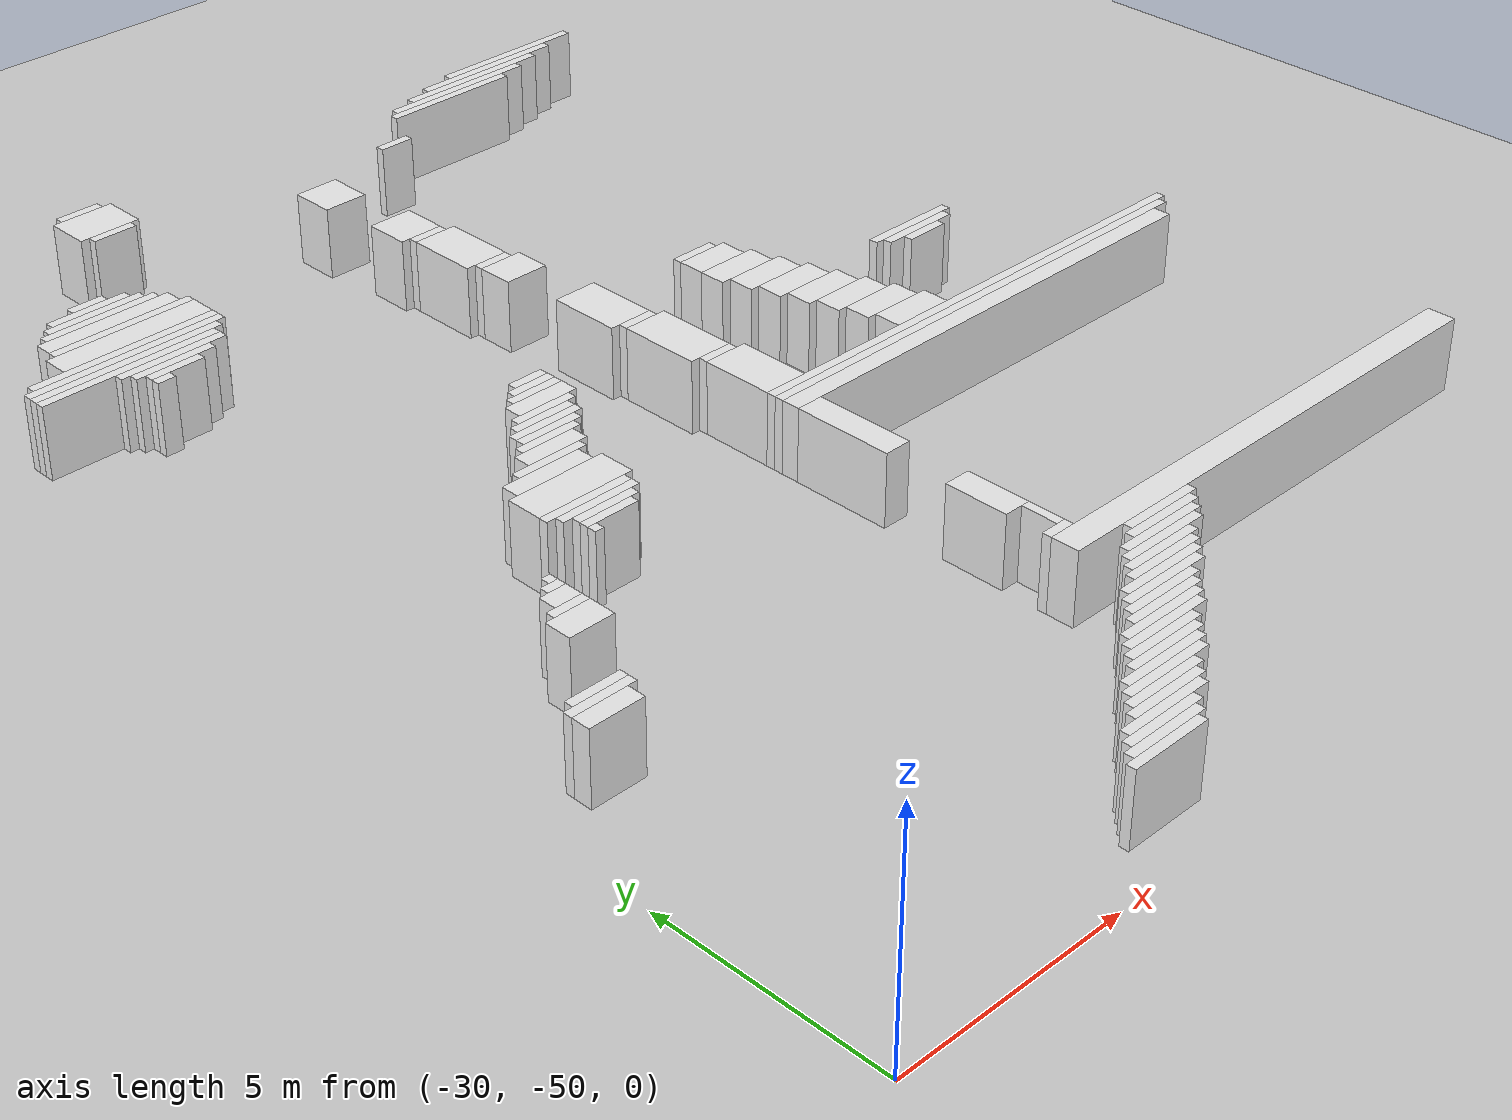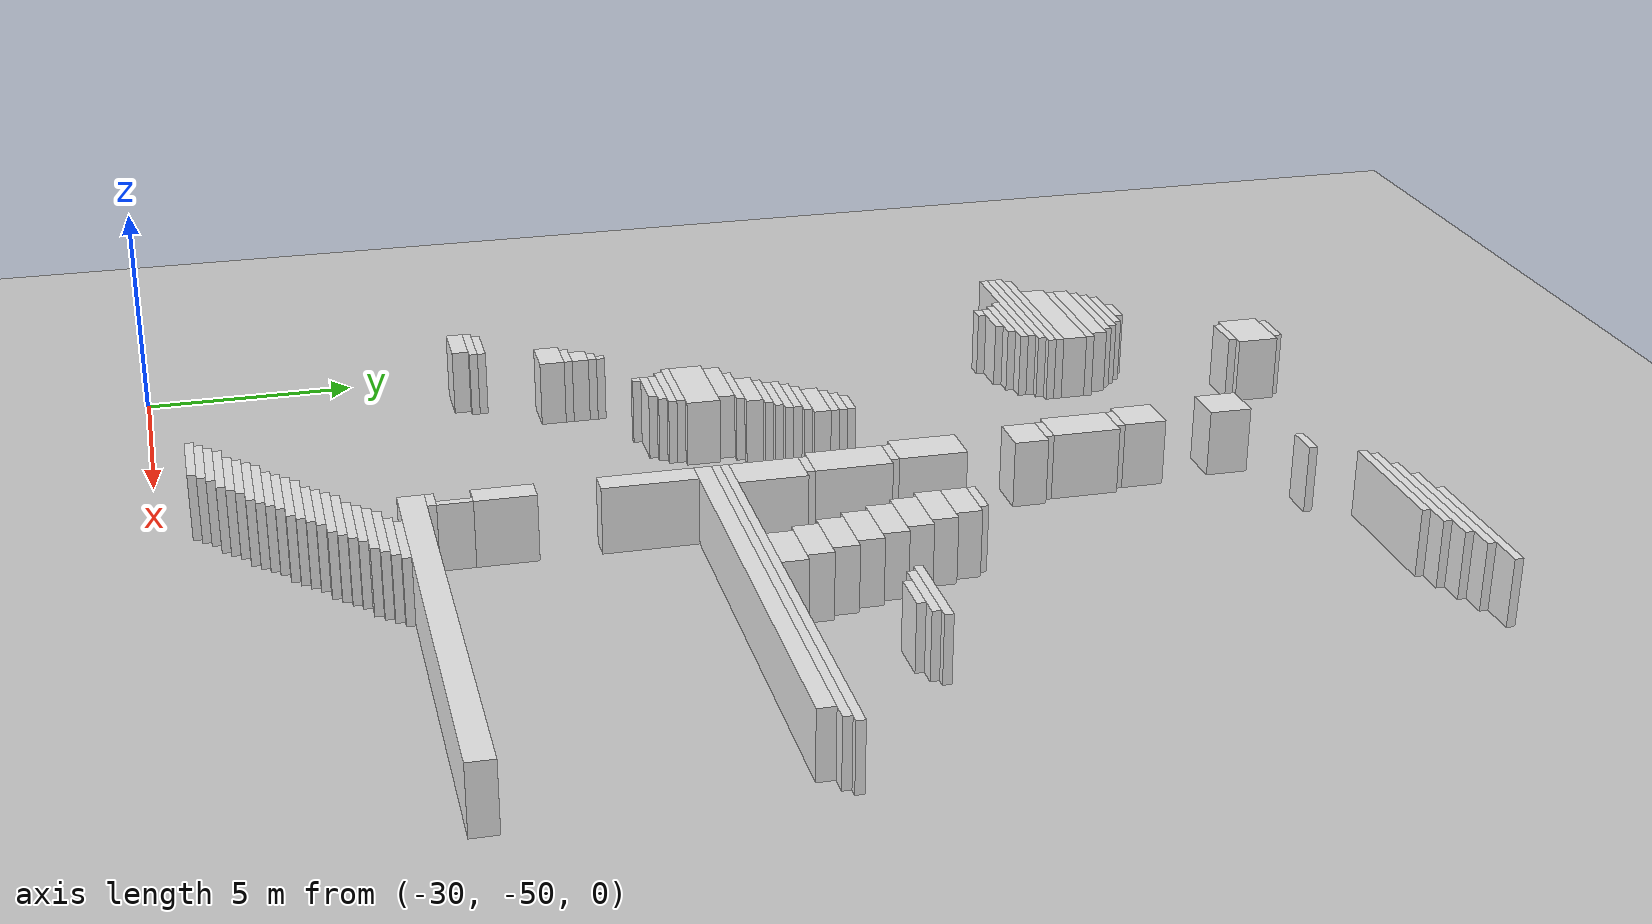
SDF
<sdf version="1.7">
 <world name="default">
  <model name="ground_plane">
   <static>1</static>
   <link name="link">
    <collision name="collision">
     <geometry><plane><normal>0 0 1</normal><size>120 120</size></plane></geometry>
    </collision>
    <visual name="visual">
     <geometry><plane><normal>0 0 1</normal><size>120 120</size></plane></geometry>
     <material>
      <script><uri>file://media/materials/scripts/gazebo.material</uri><name>Gazebo/Grey</name></script>
     </material>
    </visual>
   </link>
  </model>
  <model name="random_complex_01_model">
   <static>1</static>
   <link name="obs_2653">
    <pose>-24.7000 -22.3000 0.8000 0 0 0</pose>
    <collision name="obs_2653_col"><geometry><box><size>1.0000 0.2000 1.6000</size></box></geometry></collision>
    <visual name="obs_2653_vis">
     <geometry><box><size>1.0000 0.2000 1.6000</size></box></geometry>
     <material>
      <script><uri>file://media/materials/scripts/gazebo.material</uri><name>Gazebo/White</name></script>
     </material>
    </visual>
   </link>
   <link name="obs_2660">
    <pose>-13.2000 -22.5000 0.8000 0 0 0</pose>
    <collision name="obs_2660_col"><geometry><box><size>3.6000 0.2000 1.6000</size></box></geometry></collision>
    <visual name="obs_2660_vis">
     <geometry><box><size>3.6000 0.2000 1.6000</size></box></geometry>
     <material>
      <script><uri>file://media/materials/scripts/gazebo.material</uri><name>Gazebo/White</name></script>
     </material>
    </visual>
   </link>
   <link name="obs_2666">
    <pose>-14.0000 -22.7000 0.8000 0 0 0</pose>
    <collision name="obs_2666_col"><geometry><box><size>3.6000 0.2000 1.6000</size></box></geometry></collision>
    <visual name="obs_2666_vis">
     <geometry><box><size>3.6000 0.2000 1.6000</size></box></geometry>
     <material>
      <script><uri>file://media/materials/scripts/gazebo.material</uri><name>Gazebo/White</name></script>
     </material>
    </visual>
   </link>
   <link name="obs_2670">
    <pose>-14.6000 -22.9000 0.8000 0 0 0</pose>
    <collision name="obs_2670_col"><geometry><box><size>3.6000 0.2000 1.6000</size></box></geometry></collision>
    <visual name="obs_2670_vis">
     <geometry><box><size>3.6000 0.2000 1.6000</size></box></geometry>
     <material>
      <script><uri>file://media/materials/scripts/gazebo.material</uri><name>Gazebo/White</name></script>
     </material>
    </visual>
   </link>
   <link name="obs_2677">
    <pose>-15.2000 -23.1000 0.8000 0 0 0</pose>
    <collision name="obs_2677_col"><geometry><box><size>3.6000 0.2000 1.6000</size></box></geometry></collision>
    <visual name="obs_2677_vis">
     <geometry><box><size>3.6000 0.2000 1.6000</size></box></geometry>
     <material>
      <script><uri>file://media/materials/scripts/gazebo.material</uri><name>Gazebo/White</name></script>
     </material>
    </visual>
   </link>
   <link name="obs_2684">
    <pose>-24.7000 -22.9000 0.8000 0 0 0</pose>
    <collision name="obs_2684_col"><geometry><box><size>1.4000 1.0000 1.6000</size></box></geometry></collision>
    <visual name="obs_2684_vis">
     <geometry><box><size>1.4000 1.0000 1.6000</size></box></geometry>
     <material>
      <script><uri>file://media/materials/scripts/gazebo.material</uri><name>Gazebo/White</name></script>
     </material>
    </visual>
   </link>
   <link name="obs_2689">
    <pose>-15.6000 -23.3000 0.8000 0 0 0</pose>
    <collision name="obs_2689_col"><geometry><box><size>3.2000 0.2000 1.6000</size></box></geometry></collision>
    <visual name="obs_2689_vis">
     <geometry><box><size>3.2000 0.2000 1.6000</size></box></geometry>
     <material>
      <script><uri>file://media/materials/scripts/gazebo.material</uri><name>Gazebo/White</name></script>
     </material>
    </visual>
   </link>
   <link name="obs_2697">
    <pose>-24.7000 -23.5000 0.8000 0 0 0</pose>
    <collision name="obs_2697_col"><geometry><box><size>1.0000 0.2000 1.6000</size></box></geometry></collision>
    <visual name="obs_2697_vis">
     <geometry><box><size>1.0000 0.2000 1.6000</size></box></geometry>
     <material>
      <script><uri>file://media/materials/scripts/gazebo.material</uri><name>Gazebo/White</name></script>
     </material>
    </visual>
   </link>
   <link name="obs_2727">
    <pose>-18.0000 -24.3000 0.8000 0 0 0</pose>
    <collision name="obs_2727_col"><geometry><box><size>0.8000 0.2000 1.6000</size></box></geometry></collision>
    <visual name="obs_2727_vis">
     <geometry><box><size>0.8000 0.2000 1.6000</size></box></geometry>
     <material>
      <script><uri>file://media/materials/scripts/gazebo.material</uri><name>Gazebo/White</name></script>
     </material>
    </visual>
   </link>
   <link name="obs_2775">
    <pose>-20.5000 -25.3000 0.8000 0 0 0</pose>
    <collision name="obs_2775_col"><geometry><box><size>1.0000 1.0000 1.6000</size></box></geometry></collision>
    <visual name="obs_2775_vis">
     <geometry><box><size>1.0000 1.0000 1.6000</size></box></geometry>
     <material>
      <script><uri>file://media/materials/scripts/gazebo.material</uri><name>Gazebo/White</name></script>
     </material>
    </visual>
   </link>
   <link name="obs_2778">
    <pose>-26.8000 -25.7000 0.8000 0 0 0</pose>
    <collision name="obs_2778_col"><geometry><box><size>0.8000 0.2000 1.6000</size></box></geometry></collision>
    <visual name="obs_2778_vis">
     <geometry><box><size>0.8000 0.2000 1.6000</size></box></geometry>
     <material>
      <script><uri>file://media/materials/scripts/gazebo.material</uri><name>Gazebo/White</name></script>
     </material>
    </visual>
   </link>
   <link name="obs_2787">
    <pose>-26.9000 -25.9000 0.8000 0 0 0</pose>
    <collision name="obs_2787_col"><geometry><box><size>1.8000 0.2000 1.6000</size></box></geometry></collision>
    <visual name="obs_2787_vis">
     <geometry><box><size>1.8000 0.2000 1.6000</size></box></geometry>
     <material>
      <script><uri>file://media/materials/scripts/gazebo.material</uri><name>Gazebo/White</name></script>
     </material>
    </visual>
   </link>
   <link name="obs_2794">
    <pose>-26.9000 -26.1000 0.8000 0 0 0</pose>
    <collision name="obs_2794_col"><geometry><box><size>2.2000 0.2000 1.6000</size></box></geometry></collision>
    <visual name="obs_2794_vis">
     <geometry><box><size>2.2000 0.2000 1.6000</size></box></geometry>
     <material>
      <script><uri>file://media/materials/scripts/gazebo.material</uri><name>Gazebo/White</name></script>
     </material>
    </visual>
   </link>
   <link name="obs_2800">
    <pose>-26.9000 -26.3000 0.8000 0 0 0</pose>
    <collision name="obs_2800_col"><geometry><box><size>2.6000 0.2000 1.6000</size></box></geometry></collision>
    <visual name="obs_2800_vis">
     <geometry><box><size>2.6000 0.2000 1.6000</size></box></geometry>
     <material>
      <script><uri>file://media/materials/scripts/gazebo.material</uri><name>Gazebo/White</name></script>
     </material>
    </visual>
   </link>
   <link name="obs_2810">
    <pose>-26.9000 -26.6000 0.8000 0 0 0</pose>
    <collision name="obs_2810_col"><geometry><box><size>3.0000 0.4000 1.6000</size></box></geometry></collision>
    <visual name="obs_2810_vis">
     <geometry><box><size>3.0000 0.4000 1.6000</size></box></geometry>
     <material>
      <script><uri>file://media/materials/scripts/gazebo.material</uri><name>Gazebo/White</name></script>
     </material>
    </visual>
   </link>
   <link name="obs_2817">
    <pose>-26.8000 -26.9000 0.8000 0 0 0</pose>
    <collision name="obs_2817_col"><geometry><box><size>3.2000 0.2000 1.6000</size></box></geometry></collision>
    <visual name="obs_2817_vis">
     <geometry><box><size>3.2000 0.2000 1.6000</size></box></geometry>
     <material>
      <script><uri>file://media/materials/scripts/gazebo.material</uri><name>Gazebo/White</name></script>
     </material>
    </visual>
   </link>
   <link name="obs_2836">
    <pose>-26.9000 -27.3000 0.8000 0 0 0</pose>
    <collision name="obs_2836_col"><geometry><box><size>3.4000 0.6000 1.6000</size></box></geometry></collision>
    <visual name="obs_2836_vis">
     <geometry><box><size>3.4000 0.6000 1.6000</size></box></geometry>
     <material>
      <script><uri>file://media/materials/scripts/gazebo.material</uri><name>Gazebo/White</name></script>
     </material>
    </visual>
   </link>
   <link name="obs_2848">
    <pose>-27.3000 -27.7000 0.8000 0 0 0</pose>
    <collision name="obs_2848_col"><geometry><box><size>4.2000 0.2000 1.6000</size></box></geometry></collision>
    <visual name="obs_2848_vis">
     <geometry><box><size>4.2000 0.2000 1.6000</size></box></geometry>
     <material>
      <script><uri>file://media/materials/scripts/gazebo.material</uri><name>Gazebo/White</name></script>
     </material>
    </visual>
   </link>
   <link name="obs_2852">
    <pose>-20.3000 -27.5000 0.8000 0 0 0</pose>
    <collision name="obs_2852_col"><geometry><box><size>1.0000 1.0000 1.6000</size></box></geometry></collision>
    <visual name="obs_2852_vis">
     <geometry><box><size>1.0000 1.0000 1.6000</size></box></geometry>
     <material>
      <script><uri>file://media/materials/scripts/gazebo.material</uri><name>Gazebo/White</name></script>
     </material>
    </visual>
   </link>
   <link name="obs_2855">
    <pose>-27.4000 -27.9000 0.8000 0 0 0</pose>
    <collision name="obs_2855_col"><geometry><box><size>4.4000 0.2000 1.6000</size></box></geometry></collision>
    <visual name="obs_2855_vis">
     <geometry><box><size>4.4000 0.2000 1.6000</size></box></geometry>
     <material>
      <script><uri>file://media/materials/scripts/gazebo.material</uri><name>Gazebo/White</name></script>
     </material>
    </visual>
   </link>
   <link name="obs_2863">
    <pose>-27.5000 -28.1000 0.8000 0 0 0</pose>
    <collision name="obs_2863_col"><geometry><box><size>4.2000 0.2000 1.6000</size></box></geometry></collision>
    <visual name="obs_2863_vis">
     <geometry><box><size>4.2000 0.2000 1.6000</size></box></geometry>
     <material>
      <script><uri>file://media/materials/scripts/gazebo.material</uri><name>Gazebo/White</name></script>
     </material>
    </visual>
   </link>
   <link name="obs_2864">
    <pose>-20.2000 -28.1000 0.8000 0 0 0</pose>
    <collision name="obs_2864_col"><geometry><box><size>0.8000 0.2000 1.6000</size></box></geometry></collision>
    <visual name="obs_2864_vis">
     <geometry><box><size>0.8000 0.2000 1.6000</size></box></geometry>
     <material>
      <script><uri>file://media/materials/scripts/gazebo.material</uri><name>Gazebo/White</name></script>
     </material>
    </visual>
   </link>
   <link name="obs_2871">
    <pose>-27.6000 -28.3000 0.8000 0 0 0</pose>
    <collision name="obs_2871_col"><geometry><box><size>4.0000 0.2000 1.6000</size></box></geometry></collision>
    <visual name="obs_2871_vis">
     <geometry><box><size>4.0000 0.2000 1.6000</size></box></geometry>
     <material>
      <script><uri>file://media/materials/scripts/gazebo.material</uri><name>Gazebo/White</name></script>
     </material>
    </visual>
   </link>
   <link name="obs_2880">
    <pose>-26.8000 -28.5000 0.8000 0 0 0</pose>
    <collision name="obs_2880_col"><geometry><box><size>2.4000 0.2000 1.6000</size></box></geometry></collision>
    <visual name="obs_2880_vis">
     <geometry><box><size>2.4000 0.2000 1.6000</size></box></geometry>
     <material>
      <script><uri>file://media/materials/scripts/gazebo.material</uri><name>Gazebo/White</name></script>
     </material>
    </visual>
   </link>
   <link name="obs_2891">
    <pose>-26.9000 -28.7000 0.8000 0 0 0</pose>
    <collision name="obs_2891_col"><geometry><box><size>1.8000 0.2000 1.6000</size></box></geometry></collision>
    <visual name="obs_2891_vis">
     <geometry><box><size>1.8000 0.2000 1.6000</size></box></geometry>
     <material>
      <script><uri>file://media/materials/scripts/gazebo.material</uri><name>Gazebo/White</name></script>
     </material>
    </visual>
   </link>
   <link name="obs_2900">
    <pose>-27.0000 -28.9000 0.8000 0 0 0</pose>
    <collision name="obs_2900_col"><geometry><box><size>1.2000 0.2000 1.6000</size></box></geometry></collision>
    <visual name="obs_2900_vis">
     <geometry><box><size>1.2000 0.2000 1.6000</size></box></geometry>
     <material>
      <script><uri>file://media/materials/scripts/gazebo.material</uri><name>Gazebo/White</name></script>
     </material>
    </visual>
   </link>
   <link name="obs_2906">
    <pose>-27.4000 -29.1000 0.8000 0 0 0</pose>
    <collision name="obs_2906_col"><geometry><box><size>0.4000 0.2000 1.6000</size></box></geometry></collision>
    <visual name="obs_2906_vis">
     <geometry><box><size>0.4000 0.2000 1.6000</size></box></geometry>
     <material>
      <script><uri>file://media/materials/scripts/gazebo.material</uri><name>Gazebo/White</name></script>
     </material>
    </visual>
   </link>
   <link name="obs_2921">
    <pose>-20.1000 -29.0000 0.8000 0 0 0</pose>
    <collision name="obs_2921_col"><geometry><box><size>1.0000 1.6000 1.6000</size></box></geometry></collision>
    <visual name="obs_2921_vis">
     <geometry><box><size>1.0000 1.6000 1.6000</size></box></geometry>
     <material>
      <script><uri>file://media/materials/scripts/gazebo.material</uri><name>Gazebo/White</name></script>
     </material>
    </visual>
   </link>
   <link name="obs_2932">
    <pose>-20.0000 -29.9000 0.8000 0 0 0</pose>
    <collision name="obs_2932_col"><geometry><box><size>0.8000 0.2000 1.6000</size></box></geometry></collision>
    <visual name="obs_2932_vis">
     <geometry><box><size>0.8000 0.2000 1.6000</size></box></geometry>
     <material>
      <script><uri>file://media/materials/scripts/gazebo.material</uri><name>Gazebo/White</name></script>
     </material>
    </visual>
   </link>
   <link name="obs_2955">
    <pose>-19.9000 -30.4000 0.8000 0 0 0</pose>
    <collision name="obs_2955_col"><geometry><box><size>1.0000 0.8000 1.6000</size></box></geometry></collision>
    <visual name="obs_2955_vis">
     <geometry><box><size>1.0000 0.8000 1.6000</size></box></geometry>
     <material>
      <script><uri>file://media/materials/scripts/gazebo.material</uri><name>Gazebo/White</name></script>
     </material>
    </visual>
   </link>
   <link name="obs_3016">
    <pose>-16.9000 -32.5000 0.8000 0 0 0</pose>
    <collision name="obs_3016_col"><geometry><box><size>1.0000 0.2000 1.6000</size></box></geometry></collision>
    <visual name="obs_3016_vis">
     <geometry><box><size>1.0000 0.2000 1.6000</size></box></geometry>
     <material>
      <script><uri>file://media/materials/scripts/gazebo.material</uri><name>Gazebo/White</name></script>
     </material>
    </visual>
   </link>
   <link name="obs_3036">
    <pose>-16.8000 -32.9000 0.8000 0 0 0</pose>
    <collision name="obs_3036_col"><geometry><box><size>1.2000 0.6000 1.6000</size></box></geometry></collision>
    <visual name="obs_3036_vis">
     <geometry><box><size>1.2000 0.6000 1.6000</size></box></geometry>
     <material>
      <script><uri>file://media/materials/scripts/gazebo.material</uri><name>Gazebo/White</name></script>
     </material>
    </visual>
   </link>
   <link name="obs_3053">
    <pose>-19.7000 -32.8000 0.8000 0 0 0</pose>
    <collision name="obs_3053_col"><geometry><box><size>1.0000 1.6000 1.6000</size></box></geometry></collision>
    <visual name="obs_3053_vis">
     <geometry><box><size>1.0000 1.6000 1.6000</size></box></geometry>
     <material>
      <script><uri>file://media/materials/scripts/gazebo.material</uri><name>Gazebo/White</name></script>
     </material>
    </visual>
   </link>
   <link name="obs_3060">
    <pose>-16.7000 -33.5000 0.8000 0 0 0</pose>
    <collision name="obs_3060_col"><geometry><box><size>1.4000 0.6000 1.6000</size></box></geometry></collision>
    <visual name="obs_3060_vis">
     <geometry><box><size>1.4000 0.6000 1.6000</size></box></geometry>
     <material>
      <script><uri>file://media/materials/scripts/gazebo.material</uri><name>Gazebo/White</name></script>
     </material>
    </visual>
   </link>
   <link name="obs_3063">
    <pose>-19.6000 -33.7000 0.8000 0 0 0</pose>
    <collision name="obs_3063_col"><geometry><box><size>0.8000 0.2000 1.6000</size></box></geometry></collision>
    <visual name="obs_3063_vis">
     <geometry><box><size>0.8000 0.2000 1.6000</size></box></geometry>
     <material>
      <script><uri>file://media/materials/scripts/gazebo.material</uri><name>Gazebo/White</name></script>
     </material>
    </visual>
   </link>
   <link name="obs_3073">
    <pose>-22.6000 -33.9000 0.8000 0 0 0</pose>
    <collision name="obs_3073_col"><geometry><box><size>0.8000 0.2000 1.6000</size></box></geometry></collision>
    <visual name="obs_3073_vis">
     <geometry><box><size>0.8000 0.2000 1.6000</size></box></geometry>
     <material>
      <script><uri>file://media/materials/scripts/gazebo.material</uri><name>Gazebo/White</name></script>
     </material>
    </visual>
   </link>
   <link name="obs_3081">
    <pose>-22.7000 -34.1000 0.8000 0 0 0</pose>
    <collision name="obs_3081_col"><geometry><box><size>1.0000 0.2000 1.6000</size></box></geometry></collision>
    <visual name="obs_3081_vis">
     <geometry><box><size>1.0000 0.2000 1.6000</size></box></geometry>
     <material>
      <script><uri>file://media/materials/scripts/gazebo.material</uri><name>Gazebo/White</name></script>
     </material>
    </visual>
   </link>
   <link name="obs_3085">
    <pose>-16.5000 -34.1000 0.8000 0 0 0</pose>
    <collision name="obs_3085_col"><geometry><box><size>1.4000 0.6000 1.6000</size></box></geometry></collision>
    <visual name="obs_3085_vis">
     <geometry><box><size>1.4000 0.6000 1.6000</size></box></geometry>
     <material>
      <script><uri>file://media/materials/scripts/gazebo.material</uri><name>Gazebo/White</name></script>
     </material>
    </visual>
   </link>
   <link name="obs_3087">
    <pose>-22.8000 -34.3000 0.8000 0 0 0</pose>
    <collision name="obs_3087_col"><geometry><box><size>1.2000 0.2000 1.6000</size></box></geometry></collision>
    <visual name="obs_3087_vis">
     <geometry><box><size>1.2000 0.2000 1.6000</size></box></geometry>
     <material>
      <script><uri>file://media/materials/scripts/gazebo.material</uri><name>Gazebo/White</name></script>
     </material>
    </visual>
   </link>
   <link name="obs_3098">
    <pose>-22.9000 -34.6000 0.8000 0 0 0</pose>
    <collision name="obs_3098_col"><geometry><box><size>1.4000 0.4000 1.6000</size></box></geometry></collision>
    <visual name="obs_3098_vis">
     <geometry><box><size>1.4000 0.4000 1.6000</size></box></geometry>
     <material>
      <script><uri>file://media/materials/scripts/gazebo.material</uri><name>Gazebo/White</name></script>
     </material>
    </visual>
   </link>
   <link name="obs_3099">
    <pose>-12.9000 -34.7000 0.8000 0 0 0</pose>
    <collision name="obs_3099_col"><geometry><box><size>2.2000 0.2000 1.6000</size></box></geometry></collision>
    <visual name="obs_3099_vis">
     <geometry><box><size>2.2000 0.2000 1.6000</size></box></geometry>
     <material>
      <script><uri>file://media/materials/scripts/gazebo.material</uri><name>Gazebo/White</name></script>
     </material>
    </visual>
   </link>
   <link name="obs_3107">
    <pose>-16.3000 -34.7000 0.8000 0 0 0</pose>
    <collision name="obs_3107_col"><geometry><box><size>1.4000 0.6000 1.6000</size></box></geometry></collision>
    <visual name="obs_3107_vis">
     <geometry><box><size>1.4000 0.6000 1.6000</size></box></geometry>
     <material>
      <script><uri>file://media/materials/scripts/gazebo.material</uri><name>Gazebo/White</name></script>
     </material>
    </visual>
   </link>
   <link name="obs_3110">
    <pose>-23.1000 -34.9000 0.8000 0 0 0</pose>
    <collision name="obs_3110_col"><geometry><box><size>1.4000 0.2000 1.6000</size></box></geometry></collision>
    <visual name="obs_3110_vis">
     <geometry><box><size>1.4000 0.2000 1.6000</size></box></geometry>
     <material>
      <script><uri>file://media/materials/scripts/gazebo.material</uri><name>Gazebo/White</name></script>
     </material>
    </visual>
   </link>
   <link name="obs_3111">
    <pose>-12.9000 -34.9000 0.8000 0 0 0</pose>
    <collision name="obs_3111_col"><geometry><box><size>1.8000 0.2000 1.6000</size></box></geometry></collision>
    <visual name="obs_3111_vis">
     <geometry><box><size>1.8000 0.2000 1.6000</size></box></geometry>
     <material>
      <script><uri>file://media/materials/scripts/gazebo.material</uri><name>Gazebo/White</name></script>
     </material>
    </visual>
   </link>
   <link name="obs_3116">
    <pose>-23.3000 -35.1000 0.8000 0 0 0</pose>
    <collision name="obs_3116_col"><geometry><box><size>1.4000 0.2000 1.6000</size></box></geometry></collision>
    <visual name="obs_3116_vis">
     <geometry><box><size>1.4000 0.2000 1.6000</size></box></geometry>
     <material>
      <script><uri>file://media/materials/scripts/gazebo.material</uri><name>Gazebo/White</name></script>
     </material>
    </visual>
   </link>
   <link name="obs_3117">
    <pose>-12.9000 -35.1000 0.8000 0 0 0</pose>
    <collision name="obs_3117_col"><geometry><box><size>1.0000 0.2000 1.6000</size></box></geometry></collision>
    <visual name="obs_3117_vis">
     <geometry><box><size>1.0000 0.2000 1.6000</size></box></geometry>
     <material>
      <script><uri>file://media/materials/scripts/gazebo.material</uri><name>Gazebo/White</name></script>
     </material>
    </visual>
   </link>
   <link name="obs_3123">
    <pose>-23.4000 -35.3000 0.8000 0 0 0</pose>
    <collision name="obs_3123_col"><geometry><box><size>1.6000 0.2000 1.6000</size></box></geometry></collision>
    <visual name="obs_3123_vis">
     <geometry><box><size>1.6000 0.2000 1.6000</size></box></geometry>
     <material>
      <script><uri>file://media/materials/scripts/gazebo.material</uri><name>Gazebo/White</name></script>
     </material>
    </visual>
   </link>
   <link name="obs_3128">
    <pose>-19.5000 -34.7000 0.8000 0 0 0</pose>
    <collision name="obs_3128_col"><geometry><box><size>1.0000 1.8000 1.6000</size></box></geometry></collision>
    <visual name="obs_3128_vis">
     <geometry><box><size>1.0000 1.8000 1.6000</size></box></geometry>
     <material>
      <script><uri>file://media/materials/scripts/gazebo.material</uri><name>Gazebo/White</name></script>
     </material>
    </visual>
   </link>
   <link name="obs_3130">
    <pose>-16.1000 -35.3000 0.8000 0 0 0</pose>
    <collision name="obs_3130_col"><geometry><box><size>1.4000 0.6000 1.6000</size></box></geometry></collision>
    <visual name="obs_3130_vis">
     <geometry><box><size>1.4000 0.6000 1.6000</size></box></geometry>
     <material>
      <script><uri>file://media/materials/scripts/gazebo.material</uri><name>Gazebo/White</name></script>
     </material>
    </visual>
   </link>
   <link name="obs_3132">
    <pose>-23.5000 -35.5000 0.8000 0 0 0</pose>
    <collision name="obs_3132_col"><geometry><box><size>1.4000 0.2000 1.6000</size></box></geometry></collision>
    <visual name="obs_3132_vis">
     <geometry><box><size>1.4000 0.2000 1.6000</size></box></geometry>
     <material>
      <script><uri>file://media/materials/scripts/gazebo.material</uri><name>Gazebo/White</name></script>
     </material>
    </visual>
   </link>
   <link name="obs_3141">
    <pose>-23.7000 -35.7000 0.8000 0 0 0</pose>
    <collision name="obs_3141_col"><geometry><box><size>1.4000 0.2000 1.6000</size></box></geometry></collision>
    <visual name="obs_3141_vis">
     <geometry><box><size>1.4000 0.2000 1.6000</size></box></geometry>
     <material>
      <script><uri>file://media/materials/scripts/gazebo.material</uri><name>Gazebo/White</name></script>
     </material>
    </visual>
   </link>
   <link name="obs_3142">
    <pose>-19.4000 -35.7000 0.8000 0 0 0</pose>
    <collision name="obs_3142_col"><geometry><box><size>0.8000 0.2000 1.6000</size></box></geometry></collision>
    <visual name="obs_3142_vis">
     <geometry><box><size>0.8000 0.2000 1.6000</size></box></geometry>
     <material>
      <script><uri>file://media/materials/scripts/gazebo.material</uri><name>Gazebo/White</name></script>
     </material>
    </visual>
   </link>
   <link name="obs_3153">
    <pose>-15.9000 -35.9000 0.8000 0 0 0</pose>
    <collision name="obs_3153_col"><geometry><box><size>1.4000 0.6000 1.6000</size></box></geometry></collision>
    <visual name="obs_3153_vis">
     <geometry><box><size>1.4000 0.6000 1.6000</size></box></geometry>
     <material>
      <script><uri>file://media/materials/scripts/gazebo.material</uri><name>Gazebo/White</name></script>
     </material>
    </visual>
   </link>
   <link name="obs_3154">
    <pose>-23.9000 -36.0000 0.8000 0 0 0</pose>
    <collision name="obs_3154_col"><geometry><box><size>1.4000 0.4000 1.6000</size></box></geometry></collision>
    <visual name="obs_3154_vis">
     <geometry><box><size>1.4000 0.4000 1.6000</size></box></geometry>
     <material>
      <script><uri>file://media/materials/scripts/gazebo.material</uri><name>Gazebo/White</name></script>
     </material>
    </visual>
   </link>
   <link name="obs_3164">
    <pose>-24.2000 -36.3000 0.8000 0 0 0</pose>
    <collision name="obs_3164_col"><geometry><box><size>1.6000 0.2000 1.6000</size></box></geometry></collision>
    <visual name="obs_3164_vis">
     <geometry><box><size>1.6000 0.2000 1.6000</size></box></geometry>
     <material>
      <script><uri>file://media/materials/scripts/gazebo.material</uri><name>Gazebo/White</name></script>
     </material>
    </visual>
   </link>
   <link name="obs_3175">
    <pose>-15.7000 -36.5000 0.8000 0 0 0</pose>
    <collision name="obs_3175_col"><geometry><box><size>1.4000 0.6000 1.6000</size></box></geometry></collision>
    <visual name="obs_3175_vis">
     <geometry><box><size>1.4000 0.6000 1.6000</size></box></geometry>
     <material>
      <script><uri>file://media/materials/scripts/gazebo.material</uri><name>Gazebo/White</name></script>
     </material>
    </visual>
   </link>
   <link name="obs_3176">
    <pose>-24.5000 -36.6000 0.8000 0 0 0</pose>
    <collision name="obs_3176_col"><geometry><box><size>1.8000 0.4000 1.6000</size></box></geometry></collision>
    <visual name="obs_3176_vis">
     <geometry><box><size>1.8000 0.4000 1.6000</size></box></geometry>
     <material>
      <script><uri>file://media/materials/scripts/gazebo.material</uri><name>Gazebo/White</name></script>
     </material>
    </visual>
   </link>
   <link name="obs_3194">
    <pose>-19.3000 -36.6000 0.8000 0 0 0</pose>
    <collision name="obs_3194_col"><geometry><box><size>1.0000 1.6000 1.6000</size></box></geometry></collision>
    <visual name="obs_3194_vis">
     <geometry><box><size>1.0000 1.6000 1.6000</size></box></geometry>
     <material>
      <script><uri>file://media/materials/scripts/gazebo.material</uri><name>Gazebo/White</name></script>
     </material>
    </visual>
   </link>
   <link name="obs_3195">
    <pose>-15.5000 -37.1000 0.8000 0 0 0</pose>
    <collision name="obs_3195_col"><geometry><box><size>1.4000 0.6000 1.6000</size></box></geometry></collision>
    <visual name="obs_3195_vis">
     <geometry><box><size>1.4000 0.6000 1.6000</size></box></geometry>
     <material>
      <script><uri>file://media/materials/scripts/gazebo.material</uri><name>Gazebo/White</name></script>
     </material>
    </visual>
   </link>
   <link name="obs_3203">
    <pose>-24.5000 -37.2000 0.8000 0 0 0</pose>
    <collision name="obs_3203_col"><geometry><box><size>2.2000 0.8000 1.6000</size></box></geometry></collision>
    <visual name="obs_3203_vis">
     <geometry><box><size>2.2000 0.8000 1.6000</size></box></geometry>
     <material>
      <script><uri>file://media/materials/scripts/gazebo.material</uri><name>Gazebo/White</name></script>
     </material>
    </visual>
   </link>
   <link name="obs_3206">
    <pose>-14.0000 -37.5000 0.8000 0 0 0</pose>
    <collision name="obs_3206_col"><geometry><box><size>11.6000 0.2000 1.6000</size></box></geometry></collision>
    <visual name="obs_3206_vis">
     <geometry><box><size>11.6000 0.2000 1.6000</size></box></geometry>
     <material>
      <script><uri>file://media/materials/scripts/gazebo.material</uri><name>Gazebo/White</name></script>
     </material>
    </visual>
   </link>
   <link name="obs_3213">
    <pose>-24.6000 -37.7000 0.8000 0 0 0</pose>
    <collision name="obs_3213_col"><geometry><box><size>2.0000 0.2000 1.6000</size></box></geometry></collision>
    <visual name="obs_3213_vis">
     <geometry><box><size>2.0000 0.2000 1.6000</size></box></geometry>
     <material>
      <script><uri>file://media/materials/scripts/gazebo.material</uri><name>Gazebo/White</name></script>
     </material>
    </visual>
   </link>
   <link name="obs_3214">
    <pose>-14.1000 -37.7000 0.8000 0 0 0</pose>
    <collision name="obs_3214_col"><geometry><box><size>11.4000 0.2000 1.6000</size></box></geometry></collision>
    <visual name="obs_3214_vis">
     <geometry><box><size>11.4000 0.2000 1.6000</size></box></geometry>
     <material>
      <script><uri>file://media/materials/scripts/gazebo.material</uri><name>Gazebo/White</name></script>
     </material>
    </visual>
   </link>
   <link name="obs_3222">
    <pose>-24.5000 -37.9000 0.8000 0 0 0</pose>
    <collision name="obs_3222_col"><geometry><box><size>1.8000 0.2000 1.6000</size></box></geometry></collision>
    <visual name="obs_3222_vis">
     <geometry><box><size>1.8000 0.2000 1.6000</size></box></geometry>
     <material>
      <script><uri>file://media/materials/scripts/gazebo.material</uri><name>Gazebo/White</name></script>
     </material>
    </visual>
   </link>
   <link name="obs_3226">
    <pose>-14.3000 -38.0000 0.8000 0 0 0</pose>
    <collision name="obs_3226_col"><geometry><box><size>11.0000 0.4000 1.6000</size></box></geometry></collision>
    <visual name="obs_3226_vis">
     <geometry><box><size>11.0000 0.4000 1.6000</size></box></geometry>
     <material>
      <script><uri>file://media/materials/scripts/gazebo.material</uri><name>Gazebo/White</name></script>
     </material>
    </visual>
   </link>
   <link name="obs_3230">
    <pose>-24.5000 -38.1000 0.8000 0 0 0</pose>
    <collision name="obs_3230_col"><geometry><box><size>1.4000 0.2000 1.6000</size></box></geometry></collision>
    <visual name="obs_3230_vis">
     <geometry><box><size>1.4000 0.2000 1.6000</size></box></geometry>
     <material>
      <script><uri>file://media/materials/scripts/gazebo.material</uri><name>Gazebo/White</name></script>
     </material>
    </visual>
   </link>
   <link name="obs_3238">
    <pose>-24.6000 -38.3000 0.8000 0 0 0</pose>
    <collision name="obs_3238_col"><geometry><box><size>1.2000 0.2000 1.6000</size></box></geometry></collision>
    <visual name="obs_3238_vis">
     <geometry><box><size>1.2000 0.2000 1.6000</size></box></geometry>
     <material>
      <script><uri>file://media/materials/scripts/gazebo.material</uri><name>Gazebo/White</name></script>
     </material>
    </visual>
   </link>
   <link name="obs_3247">
    <pose>-25.1000 -38.5000 0.8000 0 0 0</pose>
    <collision name="obs_3247_col"><geometry><box><size>0.2000 0.2000 1.6000</size></box></geometry></collision>
    <visual name="obs_3247_vis">
     <geometry><box><size>0.2000 0.2000 1.6000</size></box></geometry>
     <material>
      <script><uri>file://media/materials/scripts/gazebo.material</uri><name>Gazebo/White</name></script>
     </material>
    </visual>
   </link>
   <link name="obs_3268">
    <pose>-26.7000 -39.1000 0.8000 0 0 0</pose>
    <collision name="obs_3268_col"><geometry><box><size>0.2000 0.2000 1.6000</size></box></geometry></collision>
    <visual name="obs_3268_vis">
     <geometry><box><size>0.2000 0.2000 1.6000</size></box></geometry>
     <material>
      <script><uri>file://media/materials/scripts/gazebo.material</uri><name>Gazebo/White</name></script>
     </material>
    </visual>
   </link>
   <link name="obs_3275">
    <pose>-26.8000 -39.3000 0.8000 0 0 0</pose>
    <collision name="obs_3275_col"><geometry><box><size>0.4000 0.2000 1.6000</size></box></geometry></collision>
    <visual name="obs_3275_vis">
     <geometry><box><size>0.4000 0.2000 1.6000</size></box></geometry>
     <material>
      <script><uri>file://media/materials/scripts/gazebo.material</uri><name>Gazebo/White</name></script>
     </material>
    </visual>
   </link>
   <link name="obs_3286">
    <pose>-26.9000 -39.6000 0.8000 0 0 0</pose>
    <collision name="obs_3286_col"><geometry><box><size>0.6000 0.4000 1.6000</size></box></geometry></collision>
    <visual name="obs_3286_vis">
     <geometry><box><size>0.6000 0.4000 1.6000</size></box></geometry>
     <material>
      <script><uri>file://media/materials/scripts/gazebo.material</uri><name>Gazebo/White</name></script>
     </material>
    </visual>
   </link>
   <link name="obs_3294">
    <pose>-27.0000 -39.9000 0.8000 0 0 0</pose>
    <collision name="obs_3294_col"><geometry><box><size>0.8000 0.2000 1.6000</size></box></geometry></collision>
    <visual name="obs_3294_vis">
     <geometry><box><size>0.8000 0.2000 1.6000</size></box></geometry>
     <material>
      <script><uri>file://media/materials/scripts/gazebo.material</uri><name>Gazebo/White</name></script>
     </material>
    </visual>
   </link>
   <link name="obs_3305">
    <pose>-19.5000 -39.3000 0.8000 0 0 0</pose>
    <collision name="obs_3305_col"><geometry><box><size>0.6000 2.2000 1.6000</size></box></geometry></collision>
    <visual name="obs_3305_vis">
     <geometry><box><size>0.6000 2.2000 1.6000</size></box></geometry>
     <material>
      <script><uri>file://media/materials/scripts/gazebo.material</uri><name>Gazebo/White</name></script>
     </material>
    </visual>
   </link>
   <link name="obs_3314">
    <pose>-27.1000 -40.3000 0.8000 0 0 0</pose>
    <collision name="obs_3314_col"><geometry><box><size>1.0000 0.6000 1.6000</size></box></geometry></collision>
    <visual name="obs_3314_vis">
     <geometry><box><size>1.0000 0.6000 1.6000</size></box></geometry>
     <material>
      <script><uri>file://media/materials/scripts/gazebo.material</uri><name>Gazebo/White</name></script>
     </material>
    </visual>
   </link>
   <link name="obs_3373">
    <pose>-28.2000 -41.9000 0.8000 0 0 0</pose>
    <collision name="obs_3373_col"><geometry><box><size>1.2000 0.2000 1.6000</size></box></geometry></collision>
    <visual name="obs_3373_vis">
     <geometry><box><size>1.2000 0.2000 1.6000</size></box></geometry>
     <material>
      <script><uri>file://media/materials/scripts/gazebo.material</uri><name>Gazebo/White</name></script>
     </material>
    </visual>
   </link>
   <link name="obs_3380">
    <pose>-28.3000 -42.1000 0.8000 0 0 0</pose>
    <collision name="obs_3380_col"><geometry><box><size>1.4000 0.2000 1.6000</size></box></geometry></collision>
    <visual name="obs_3380_vis">
     <geometry><box><size>1.4000 0.2000 1.6000</size></box></geometry>
     <material>
      <script><uri>file://media/materials/scripts/gazebo.material</uri><name>Gazebo/White</name></script>
     </material>
    </visual>
   </link>
   <link name="obs_3395">
    <pose>-28.4000 -42.4000 0.8000 0 0 0</pose>
    <collision name="obs_3395_col"><geometry><box><size>1.2000 0.4000 1.6000</size></box></geometry></collision>
    <visual name="obs_3395_vis">
     <geometry><box><size>1.2000 0.4000 1.6000</size></box></geometry>
     <material>
      <script><uri>file://media/materials/scripts/gazebo.material</uri><name>Gazebo/White</name></script>
     </material>
    </visual>
   </link>
   <link name="obs_3416">
    <pose>-19.5000 -42.5000 0.8000 0 0 0</pose>
    <collision name="obs_3416_col"><geometry><box><size>0.6000 1.4000 1.6000</size></box></geometry></collision>
    <visual name="obs_3416_vis">
     <geometry><box><size>0.6000 1.4000 1.6000</size></box></geometry>
     <material>
      <script><uri>file://media/materials/scripts/gazebo.material</uri><name>Gazebo/White</name></script>
     </material>
    </visual>
   </link>
   <link name="obs_3439">
    <pose>-19.3000 -43.6000 0.8000 0 0 0</pose>
    <collision name="obs_3439_col"><geometry><box><size>0.2000 0.8000 1.6000</size></box></geometry></collision>
    <visual name="obs_3439_vis">
     <geometry><box><size>0.2000 0.8000 1.6000</size></box></geometry>
     <material>
      <script><uri>file://media/materials/scripts/gazebo.material</uri><name>Gazebo/White</name></script>
     </material>
    </visual>
   </link>
   <link name="obs_3446">
    <pose>-19.5000 -44.1000 0.8000 0 0 0</pose>
    <collision name="obs_3446_col"><geometry><box><size>0.6000 0.2000 1.6000</size></box></geometry></collision>
    <visual name="obs_3446_vis">
     <geometry><box><size>0.6000 0.2000 1.6000</size></box></geometry>
     <material>
      <script><uri>file://media/materials/scripts/gazebo.material</uri><name>Gazebo/White</name></script>
     </material>
    </visual>
   </link>
   <link name="obs_3457">
    <pose>-14.1000 -44.5000 0.8000 0 0 0</pose>
    <collision name="obs_3457_col"><geometry><box><size>11.4000 0.6000 1.6000</size></box></geometry></collision>
    <visual name="obs_3457_vis">
     <geometry><box><size>11.4000 0.6000 1.6000</size></box></geometry>
     <material>
      <script><uri>file://media/materials/scripts/gazebo.material</uri><name>Gazebo/White</name></script>
     </material>
    </visual>
   </link>
   <link name="obs_3465">
    <pose>-17.7000 -44.9000 0.8000 0 0 0</pose>
    <collision name="obs_3465_col"><geometry><box><size>1.8000 0.2000 1.6000</size></box></geometry></collision>
    <visual name="obs_3465_vis">
     <geometry><box><size>1.8000 0.2000 1.6000</size></box></geometry>
     <material>
      <script><uri>file://media/materials/scripts/gazebo.material</uri><name>Gazebo/White</name></script>
     </material>
    </visual>
   </link>
   <link name="obs_3474">
    <pose>-17.9000 -45.1000 0.8000 0 0 0</pose>
    <collision name="obs_3474_col"><geometry><box><size>1.8000 0.2000 1.6000</size></box></geometry></collision>
    <visual name="obs_3474_vis">
     <geometry><box><size>1.8000 0.2000 1.6000</size></box></geometry>
     <material>
      <script><uri>file://media/materials/scripts/gazebo.material</uri><name>Gazebo/White</name></script>
     </material>
    </visual>
   </link>
   <link name="obs_3483">
    <pose>-18.2000 -45.3000 0.8000 0 0 0</pose>
    <collision name="obs_3483_col"><geometry><box><size>2.0000 0.2000 1.6000</size></box></geometry></collision>
    <visual name="obs_3483_vis">
     <geometry><box><size>2.0000 0.2000 1.6000</size></box></geometry>
     <material>
      <script><uri>file://media/materials/scripts/gazebo.material</uri><name>Gazebo/White</name></script>
     </material>
    </visual>
   </link>
   <link name="obs_3490">
    <pose>-18.4000 -45.5000 0.8000 0 0 0</pose>
    <collision name="obs_3490_col"><geometry><box><size>2.0000 0.2000 1.6000</size></box></geometry></collision>
    <visual name="obs_3490_vis">
     <geometry><box><size>2.0000 0.2000 1.6000</size></box></geometry>
     <material>
      <script><uri>file://media/materials/scripts/gazebo.material</uri><name>Gazebo/White</name></script>
     </material>
    </visual>
   </link>
   <link name="obs_3500">
    <pose>-18.7000 -45.7000 0.8000 0 0 0</pose>
    <collision name="obs_3500_col"><geometry><box><size>1.8000 0.2000 1.6000</size></box></geometry></collision>
    <visual name="obs_3500_vis">
     <geometry><box><size>1.8000 0.2000 1.6000</size></box></geometry>
     <material>
      <script><uri>file://media/materials/scripts/gazebo.material</uri><name>Gazebo/White</name></script>
     </material>
    </visual>
   </link>
   <link name="obs_3508">
    <pose>-18.9000 -45.9000 0.8000 0 0 0</pose>
    <collision name="obs_3508_col"><geometry><box><size>1.8000 0.2000 1.6000</size></box></geometry></collision>
    <visual name="obs_3508_vis">
     <geometry><box><size>1.8000 0.2000 1.6000</size></box></geometry>
     <material>
      <script><uri>file://media/materials/scripts/gazebo.material</uri><name>Gazebo/White</name></script>
     </material>
    </visual>
   </link>
   <link name="obs_3514">
    <pose>-19.2000 -46.1000 0.8000 0 0 0</pose>
    <collision name="obs_3514_col"><geometry><box><size>2.0000 0.2000 1.6000</size></box></geometry></collision>
    <visual name="obs_3514_vis">
     <geometry><box><size>2.0000 0.2000 1.6000</size></box></geometry>
     <material>
      <script><uri>file://media/materials/scripts/gazebo.material</uri><name>Gazebo/White</name></script>
     </material>
    </visual>
   </link>
   <link name="obs_3518">
    <pose>-19.4000 -46.3000 0.8000 0 0 0</pose>
    <collision name="obs_3518_col"><geometry><box><size>2.0000 0.2000 1.6000</size></box></geometry></collision>
    <visual name="obs_3518_vis">
     <geometry><box><size>2.0000 0.2000 1.6000</size></box></geometry>
     <material>
      <script><uri>file://media/materials/scripts/gazebo.material</uri><name>Gazebo/White</name></script>
     </material>
    </visual>
   </link>
   <link name="obs_3528">
    <pose>-19.7000 -46.5000 0.8000 0 0 0</pose>
    <collision name="obs_3528_col"><geometry><box><size>1.8000 0.2000 1.6000</size></box></geometry></collision>
    <visual name="obs_3528_vis">
     <geometry><box><size>1.8000 0.2000 1.6000</size></box></geometry>
     <material>
      <script><uri>file://media/materials/scripts/gazebo.material</uri><name>Gazebo/White</name></script>
     </material>
    </visual>
   </link>
   <link name="obs_3532">
    <pose>-19.9000 -46.7000 0.8000 0 0 0</pose>
    <collision name="obs_3532_col"><geometry><box><size>1.8000 0.2000 1.6000</size></box></geometry></collision>
    <visual name="obs_3532_vis">
     <geometry><box><size>1.8000 0.2000 1.6000</size></box></geometry>
     <material>
      <script><uri>file://media/materials/scripts/gazebo.material</uri><name>Gazebo/White</name></script>
     </material>
    </visual>
   </link>
   <link name="obs_3540">
    <pose>-20.2000 -46.9000 0.8000 0 0 0</pose>
    <collision name="obs_3540_col"><geometry><box><size>2.0000 0.2000 1.6000</size></box></geometry></collision>
    <visual name="obs_3540_vis">
     <geometry><box><size>2.0000 0.2000 1.6000</size></box></geometry>
     <material>
      <script><uri>file://media/materials/scripts/gazebo.material</uri><name>Gazebo/White</name></script>
     </material>
    </visual>
   </link>
   <link name="obs_3548">
    <pose>-20.4000 -47.1000 0.8000 0 0 0</pose>
    <collision name="obs_3548_col"><geometry><box><size>2.0000 0.2000 1.6000</size></box></geometry></collision>
    <visual name="obs_3548_vis">
     <geometry><box><size>2.0000 0.2000 1.6000</size></box></geometry>
     <material>
      <script><uri>file://media/materials/scripts/gazebo.material</uri><name>Gazebo/White</name></script>
     </material>
    </visual>
   </link>
   <link name="obs_3556">
    <pose>-20.7000 -47.3000 0.8000 0 0 0</pose>
    <collision name="obs_3556_col"><geometry><box><size>1.8000 0.2000 1.6000</size></box></geometry></collision>
    <visual name="obs_3556_vis">
     <geometry><box><size>1.8000 0.2000 1.6000</size></box></geometry>
     <material>
      <script><uri>file://media/materials/scripts/gazebo.material</uri><name>Gazebo/White</name></script>
     </material>
    </visual>
   </link>
   <link name="obs_3564">
    <pose>-20.9000 -47.5000 0.8000 0 0 0</pose>
    <collision name="obs_3564_col"><geometry><box><size>1.8000 0.2000 1.6000</size></box></geometry></collision>
    <visual name="obs_3564_vis">
     <geometry><box><size>1.8000 0.2000 1.6000</size></box></geometry>
     <material>
      <script><uri>file://media/materials/scripts/gazebo.material</uri><name>Gazebo/White</name></script>
     </material>
    </visual>
   </link>
   <link name="obs_3572">
    <pose>-21.2000 -47.7000 0.8000 0 0 0</pose>
    <collision name="obs_3572_col"><geometry><box><size>2.0000 0.2000 1.6000</size></box></geometry></collision>
    <visual name="obs_3572_vis">
     <geometry><box><size>2.0000 0.2000 1.6000</size></box></geometry>
     <material>
      <script><uri>file://media/materials/scripts/gazebo.material</uri><name>Gazebo/White</name></script>
     </material>
    </visual>
   </link>
   <link name="obs_3580">
    <pose>-21.4000 -47.9000 0.8000 0 0 0</pose>
    <collision name="obs_3580_col"><geometry><box><size>2.0000 0.2000 1.6000</size></box></geometry></collision>
    <visual name="obs_3580_vis">
     <geometry><box><size>2.0000 0.2000 1.6000</size></box></geometry>
     <material>
      <script><uri>file://media/materials/scripts/gazebo.material</uri><name>Gazebo/White</name></script>
     </material>
    </visual>
   </link>
   <link name="obs_3587">
    <pose>-21.7000 -48.1000 0.8000 0 0 0</pose>
    <collision name="obs_3587_col"><geometry><box><size>1.8000 0.2000 1.6000</size></box></geometry></collision>
    <visual name="obs_3587_vis">
     <geometry><box><size>1.8000 0.2000 1.6000</size></box></geometry>
     <material>
      <script><uri>file://media/materials/scripts/gazebo.material</uri><name>Gazebo/White</name></script>
     </material>
    </visual>
   </link>
   <link name="obs_3596">
    <pose>-21.9000 -48.3000 0.8000 0 0 0</pose>
    <collision name="obs_3596_col"><geometry><box><size>1.8000 0.2000 1.6000</size></box></geometry></collision>
    <visual name="obs_3596_vis">
     <geometry><box><size>1.8000 0.2000 1.6000</size></box></geometry>
     <material>
      <script><uri>file://media/materials/scripts/gazebo.material</uri><name>Gazebo/White</name></script>
     </material>
    </visual>
   </link>
   <link name="obs_3603">
    <pose>-22.2000 -48.5000 0.8000 0 0 0</pose>
    <collision name="obs_3603_col"><geometry><box><size>2.0000 0.2000 1.6000</size></box></geometry></collision>
    <visual name="obs_3603_vis">
     <geometry><box><size>2.0000 0.2000 1.6000</size></box></geometry>
     <material>
      <script><uri>file://media/materials/scripts/gazebo.material</uri><name>Gazebo/White</name></script>
     </material>
    </visual>
   </link>
   <link name="obs_3612">
    <pose>-22.5000 -48.7000 0.8000 0 0 0</pose>
    <collision name="obs_3612_col"><geometry><box><size>1.8000 0.2000 1.6000</size></box></geometry></collision>
    <visual name="obs_3612_vis">
     <geometry><box><size>1.8000 0.2000 1.6000</size></box></geometry>
     <material>
      <script><uri>file://media/materials/scripts/gazebo.material</uri><name>Gazebo/White</name></script>
     </material>
    </visual>
   </link>
   <link name="obs_3620">
    <pose>-22.7000 -48.9000 0.8000 0 0 0</pose>
    <collision name="obs_3620_col"><geometry><box><size>1.8000 0.2000 1.6000</size></box></geometry></collision>
    <visual name="obs_3620_vis">
     <geometry><box><size>1.8000 0.2000 1.6000</size></box></geometry>
     <material>
      <script><uri>file://media/materials/scripts/gazebo.material</uri><name>Gazebo/White</name></script>
     </material>
    </visual>
   </link>
   <link name="obs_3629">
    <pose>-22.9000 -49.1000 0.8000 0 0 0</pose>
    <collision name="obs_3629_col"><geometry><box><size>1.8000 0.2000 1.6000</size></box></geometry></collision>
    <visual name="obs_3629_vis">
     <geometry><box><size>1.8000 0.2000 1.6000</size></box></geometry>
     <material>
      <script><uri>file://media/materials/scripts/gazebo.material</uri><name>Gazebo/White</name></script>
     </material>
    </visual>
   </link>
  </model>
 </world>
</sdf>
